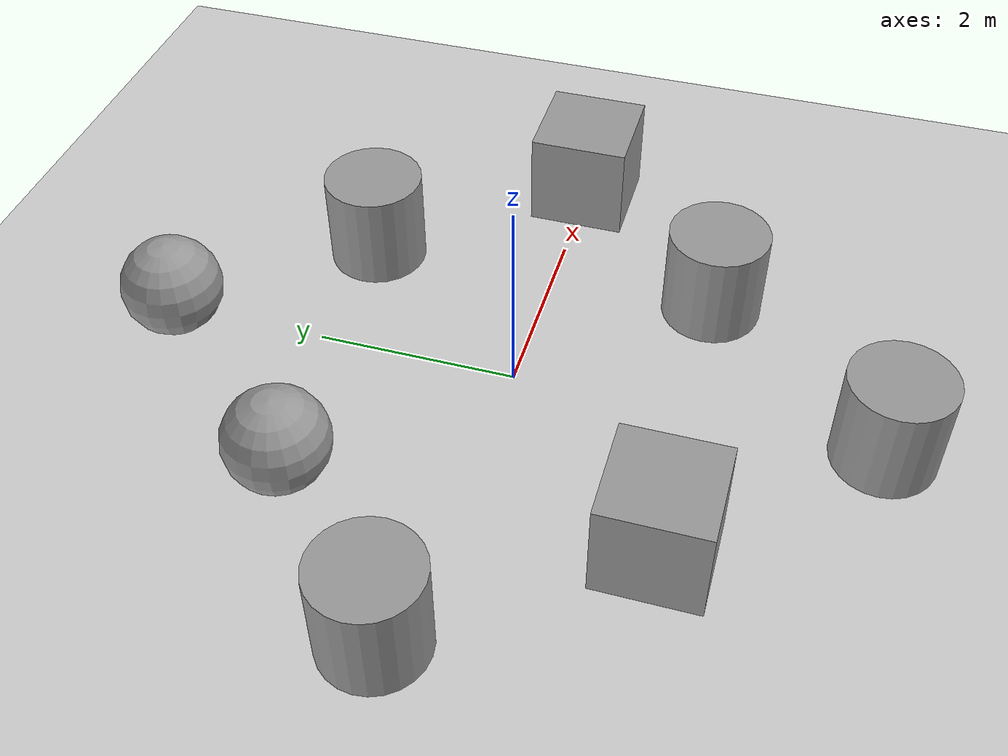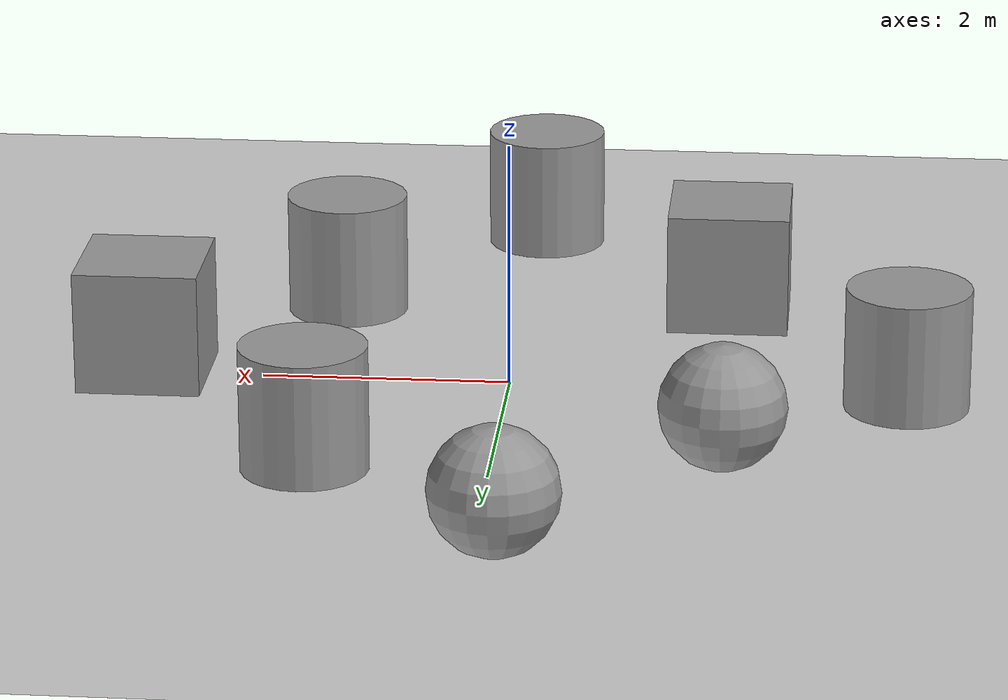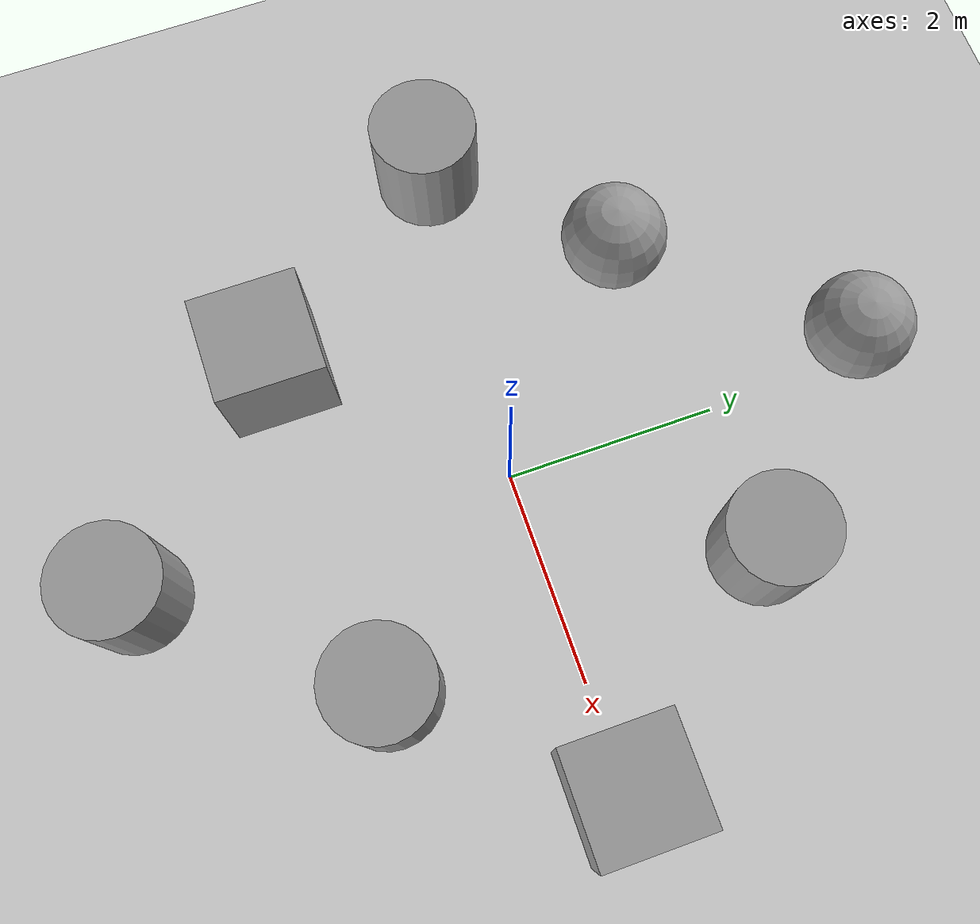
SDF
<sdf version="1.6">
 <world name="default">
  <light name="sun" type="directional">
   <pose>0 0 10 0 -0 0</pose>
   <diffuse>0.8 0.8 0.8 1</diffuse>
   <specular>0.1 0.1 0.1 1</specular>
   <attenuation>
    <range>1000</range>
    <constant>0.9</constant>
    <linear>0.01</linear>
    <quadratic>0.001</quadratic>
   </attenuation>
   <direction>-0.5 0.5 -1</direction>
  </light>
  <model name="ground_plane">
   <static>1</static>
   <link name="link">
    <collision name="collision">
     <geometry><plane><normal>0 0 1</normal><size>100 100</size></plane></geometry>
     <surface><friction><ode><mu>100</mu><mu2>50</mu2></ode></friction></surface>
    </collision>
    <visual name="visual">
     <cast_shadows>0</cast_shadows>
     <geometry><plane><normal>0 0 1</normal><size>100 100</size></plane></geometry>
     <material>
      <script><uri>file://media/materials/scripts/gazebo.material</uri><name>Gazebo/Grey</name></script>
     </material>
    </visual>
   </link>
  </model>
  <gravity>0 0 -9.8</gravity>
  <magnetic_field>6e-06 2.3e-05 -4.2e-05</magnetic_field>
  <atmosphere type="adiabatic"/>
  <physics name="default_physics" default="0" type="ode">
   <max_step_size>0.001</max_step_size>
   <real_time_factor>1</real_time_factor>
   <real_time_update_rate>1000</real_time_update_rate>
  </physics>
  <scene><ambient>0.4 0.4 0.4 1</ambient><background>0.7 0.7 0.7 1</background><shadows>1</shadows></scene>
  <spherical_coordinates>
   <surface_model>EARTH_WGS84</surface_model>
   <latitude_deg>0</latitude_deg>
   <longitude_deg>0</longitude_deg>
   <elevation>0</elevation>
   <heading_deg>0</heading_deg>
  </spherical_coordinates>
  <model name="unit_cylinder_0">
   <pose>1.50592 -1.65971 0.499998 3e-06 -4e-06 0</pose>
   <link name="link">
    <inertial>
     <mass>1</mass>
     <inertia><ixx>0.145833</ixx><ixy>0</ixy><ixz>0</ixz><iyy>0.145833</iyy><iyz>0</iyz><izz>0.125</izz></inertia>
    </inertial>
    <collision name="collision">
     <geometry><cylinder><radius>0.5</radius><length>1</length></cylinder></geometry>
    </collision>
    <visual name="visual">
     <geometry><cylinder><radius>0.5</radius><length>1</length></cylinder></geometry>
     <material>
      <script><name>Gazebo/Grey</name><uri>file://media/materials/scripts/gazebo.material</uri></script>
     </material>
    </visual>
   </link>
  </model>
  <model name="unit_box_0">
   <pose>-1.69525 -1.76703 0.499995 0 1e-05 0</pose>
   <link name="link">
    <inertial>
     <mass>1</mass>
     <inertia>
      <ixx>0.166667</ixx>
      <ixy>0</ixy>
      <ixz>0</ixz>
      <iyy>0.166667</iyy>
      <iyz>0</iyz>
      <izz>0.166667</izz>
     </inertia>
    </inertial>
    <collision name="collision"><geometry><box><size>1 1 1</size></box></geometry></collision>
    <visual name="visual">
     <geometry><box><size>1 1 1</size></box></geometry>
     <material>
      <script><name>Gazebo/Grey</name><uri>file://media/materials/scripts/gazebo.material</uri></script>
     </material>
    </visual>
   </link>
  </model>
  <model name="unit_sphere_0">
   <pose>-1.77324 1.6547 0.5 0 -0 0</pose>
   <link name="link">
    <inertial>
     <mass>1</mass>
     <inertia><ixx>0.1</ixx><ixy>0</ixy><ixz>0</ixz><iyy>0.1</iyy><iyz>0</iyz><izz>0.1</izz></inertia>
    </inertial>
    <collision name="collision"><geometry><sphere><radius>0.5</radius></sphere></geometry></collision>
    <visual name="visual">
     <geometry><sphere><radius>0.5</radius></sphere></geometry>
     <material>
      <script><name>Gazebo/Grey</name><uri>file://media/materials/scripts/gazebo.material</uri></script>
     </material>
    </visual>
   </link>
  </model>
  <model name="unit_cylinder_1">
   <pose>1.41214 1.91088 0.499992 -3e-06 -4e-06 -0</pose>
   <link name="link">
    <inertial>
     <mass>1</mass>
     <inertia><ixx>0.145833</ixx><ixy>0</ixy><ixz>0</ixz><iyy>0.145833</iyy><iyz>0</iyz><izz>0.125</izz></inertia>
    </inertial>
    <collision name="collision">
     <geometry><cylinder><radius>0.5</radius><length>1</length></cylinder></geometry>
    </collision>
    <visual name="visual">
     <geometry><cylinder><radius>0.5</radius><length>1</length></cylinder></geometry>
     <material>
      <script><name>Gazebo/Grey</name><uri>file://media/materials/scripts/gazebo.material</uri></script>
     </material>
    </visual>
   </link>
  </model>
  <model name="unit_sphere_1">
   <pose>-0.183067 3.46405 0.5 0 -0 0</pose>
   <link name="link">
    <inertial>
     <mass>1</mass>
     <inertia><ixx>0.1</ixx><ixy>0</ixy><ixz>0</ixz><iyy>0.1</iyy><iyz>0</iyz><izz>0.1</izz></inertia>
    </inertial>
    <collision name="collision"><geometry><sphere><radius>0.5</radius></sphere></geometry></collision>
    <visual name="visual">
     <geometry><sphere><radius>0.5</radius></sphere></geometry>
     <material>
      <script><name>Gazebo/Grey</name><uri>file://media/materials/scripts/gazebo.material</uri></script>
     </material>
    </visual>
   </link>
  </model>
  <model name="unit_cylinder_2">
   <pose>-3.18051 0.246522 0.499997 3e-06 4e-06 -0</pose>
   <link name="link">
    <inertial>
     <mass>1</mass>
     <inertia><ixx>0.145833</ixx><ixy>0</ixy><ixz>0</ixz><iyy>0.145833</iyy><iyz>0</iyz><izz>0.125</izz></inertia>
    </inertial>
    <collision name="collision">
     <geometry><cylinder><radius>0.5</radius><length>1</length></cylinder></geometry>
    </collision>
    <visual name="visual">
     <geometry><cylinder><radius>0.5</radius><length>1</length></cylinder></geometry>
     <material>
      <script><name>Gazebo/Grey</name><uri>file://media/materials/scripts/gazebo.material</uri></script>
     </material>
    </visual>
   </link>
  </model>
  <model name="unit_box_1">
   <pose>2.94649 0.009614 0.499995 -1e-05 0 0</pose>
   <link name="link">
    <inertial>
     <mass>1</mass>
     <inertia>
      <ixx>0.166667</ixx>
      <ixy>0</ixy>
      <ixz>0</ixz>
      <iyy>0.166667</iyy>
      <iyz>0</iyz>
      <izz>0.166667</izz>
     </inertia>
    </inertial>
    <collision name="collision"><geometry><box><size>1 1 1</size></box></geometry></collision>
    <visual name="visual">
     <geometry><box><size>1 1 1</size></box></geometry>
     <material>
      <script><name>Gazebo/Grey</name><uri>file://media/materials/scripts/gazebo.material</uri></script>
     </material>
    </visual>
   </link>
  </model>
  <model name="unit_cylinder_3">
   <pose>-0.0235 -3.52909 0.499997 3e-06 4e-06 -0</pose>
   <link name="link">
    <inertial>
     <mass>1</mass>
     <inertia><ixx>0.145833</ixx><ixy>0</ixy><ixz>0</ixz><iyy>0.145833</iyy><iyz>0</iyz><izz>0.125</izz></inertia>
    </inertial>
    <collision name="collision">
     <geometry><cylinder><radius>0.5</radius><length>1</length></cylinder></geometry>
    </collision>
    <visual name="visual">
     <geometry><cylinder><radius>0.5</radius><length>1</length></cylinder></geometry>
     <material>
      <script><name>Gazebo/Grey</name><uri>file://media/materials/scripts/gazebo.material</uri></script>
     </material>
    </visual>
   </link>
  </model>
 </world>
</sdf>
